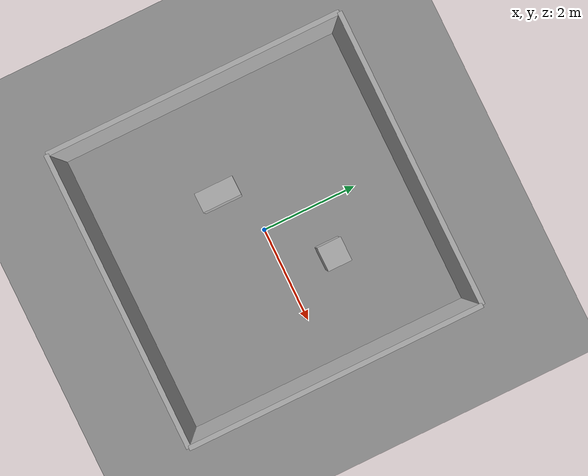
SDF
<?xml version="1.0"?>
<sdf version="1.9">
  <world name="room">
    <physics name="1ms" type="ignored">
      <max_step_size>0.001</max_step_size>
      <real_time_factor>1.0</real_time_factor>
    </physics>
    <plugin filename="gz-sim-physics-system" name="gz::sim::systems::Physics"></plugin>
    <plugin filename="gz-sim-sensors-system" name="gz::sim::systems::Sensors">
      <render_engine>ogre2</render_engine>
    </plugin>
    <plugin filename="gz-sim-scene-broadcaster-system" name="gz::sim::systems::SceneBroadcaster"></plugin>
    <plugin filename="gz-sim-user-commands-system" name="gz::sim::systems::UserCommands"></plugin>

    <light type="directional" name="sun">
      <cast_shadows>true</cast_shadows>
      <pose>0 0 10 0 0 0</pose>
      <diffuse>0.8 0.8 0.8 1</diffuse>
      <direction>-0.5 0.1 -0.9</direction>
    </light>

    <model name="ground_plane">
      <static>true</static>
      <link name="link">
        <collision name="collision">
          <geometry><plane><normal>0 0 1</normal><size>20 20</size></plane></geometry>
        </collision>
        <visual name="visual">
          <geometry><plane><normal>0 0 1</normal><size>20 20</size></plane></geometry>
          <material><ambient>0.6 0.6 0.6 1</ambient><diffuse>0.6 0.6 0.6 1</diffuse></material>
        </visual>
      </link>
    </model>

    <!-- Outer walls forming a 6x6m room -->
    <model name="wall_north"><static>true</static><pose>0 3 0.5 0 0 0</pose>
      <link name="link"><collision name="c"><geometry><box><size>6 0.1 1</size></box></geometry></collision>
      <visual name="v"><geometry><box><size>6 0.1 1</size></box></geometry></visual></link></model>

    <model name="wall_south"><static>true</static><pose>0 -3 0.5 0 0 0</pose>
      <link name="link"><collision name="c"><geometry><box><size>6 0.1 1</size></box></geometry></collision>
      <visual name="v"><geometry><box><size>6 0.1 1</size></box></geometry></visual></link></model>

    <model name="wall_east"><static>true</static><pose>3 0 0.5 0 0 1.5708</pose>
      <link name="link"><collision name="c"><geometry><box><size>6 0.1 1</size></box></geometry></collision>
      <visual name="v"><geometry><box><size>6 0.1 1</size></box></geometry></visual></link></model>

    <model name="wall_west"><static>true</static><pose>-3 0 0.5 0 0 1.5708</pose>
      <link name="link"><collision name="c"><geometry><box><size>6 0.1 1</size></box></geometry></collision>
      <visual name="v"><geometry><box><size>6 0.1 1</size></box></geometry></visual></link></model>

    <!-- A couple of obstacles in the middle -->
    <model name="box_obstacle_1"><static>true</static><pose>1 1 0.3 0 0 0</pose>
      <link name="link"><collision name="c"><geometry><box><size>0.5 0.5 0.6</size></box></geometry></collision>
      <visual name="v"><geometry><box><size>0.5 0.5 0.6</size></box></geometry></visual></link></model>

    <model name="box_obstacle_2"><static>true</static><pose>-1 -0.5 0.3 0 0 0</pose>
      <link name="link"><collision name="c"><geometry><box><size>0.4 0.8 0.6</size></box></geometry></collision>
      <visual name="v"><geometry><box><size>0.4 0.8 0.6</size></box></geometry></visual></link></model>
  </world>
</sdf>
